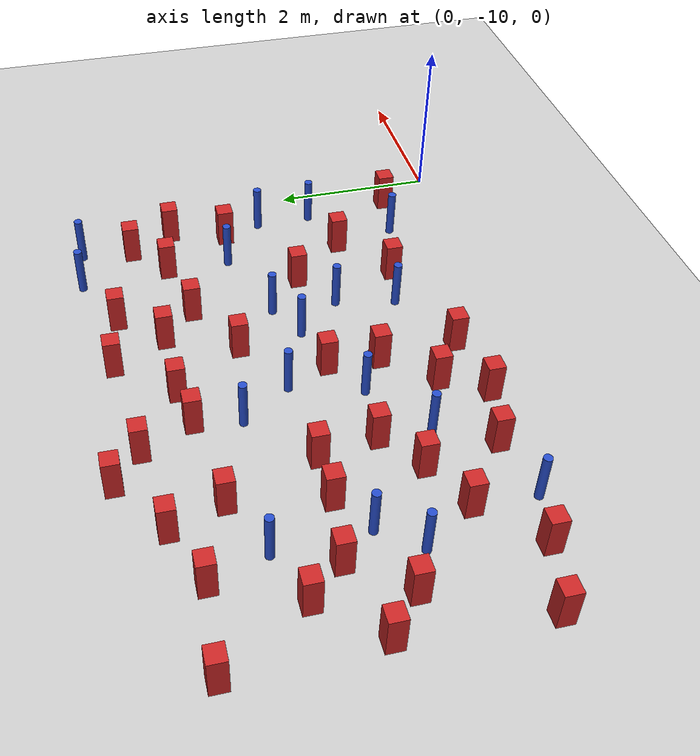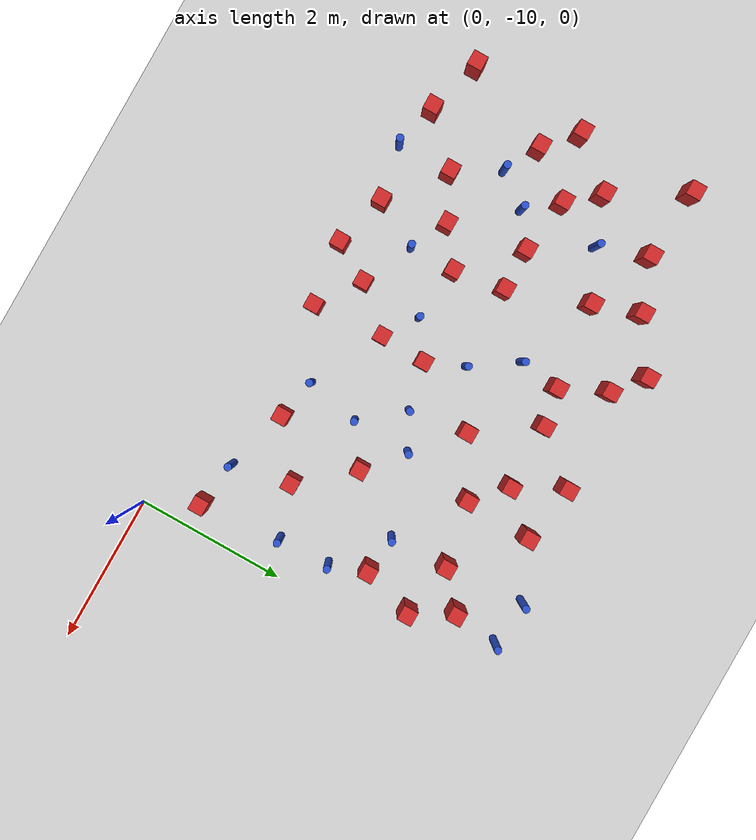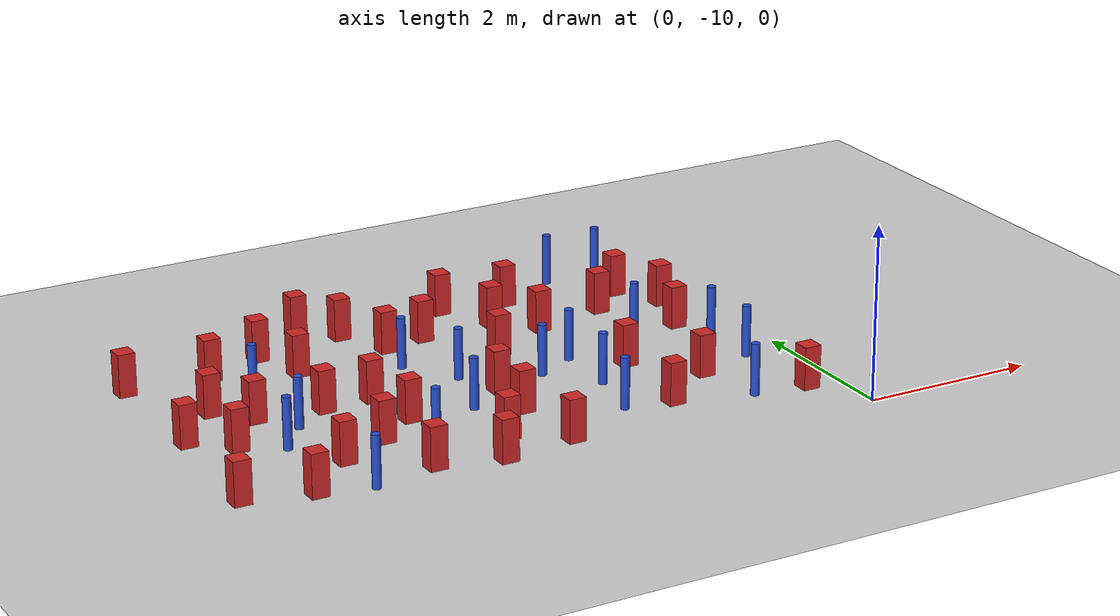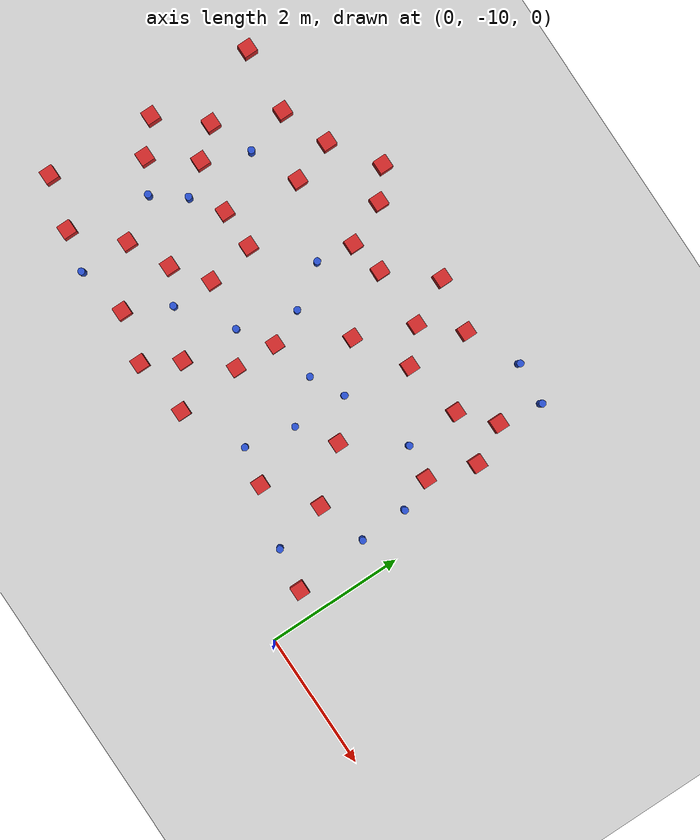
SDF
<sdf version="1.6">
 <world name="default">
  <model name="ground_plane">
   <static>1</static>
   <link name="link">
    <collision name="collision">
     <geometry><plane><normal>0 0 1</normal><size>100 100</size></plane></geometry>
     <surface><friction><ode><mu>100</mu><mu2>50</mu2></ode></friction></surface>
    </collision>
    <visual name="visual">
     <cast_shadows>0</cast_shadows>
     <geometry><plane><normal>0 0 1</normal><size>100 100</size></plane></geometry>
     <material>
      <ambient>1.0 1.0 1.0 1.0</ambient>
      <diffuse>0.8 0.8 0.8 1.0</diffuse>
      <specular>0.01 0.01 0.01 1.000000</specular>
     </material>
    </visual>
   </link>
  </model>
  <model name="pole_obstacle2">
   <static>true</static>
   <pose>-1.20993344297 -6.98747490904 7.38925637345e-09 -8.47170692799e-08 1.24976765033e-08 -1.74513093018e-07</pose>
   <link name="link">
    <pose>0 0 0.3 0 -0 0</pose>
    <inertial>
     <mass>1</mass>
     <inertia><ixx>0.145833</ixx><ixy>0</ixy><ixz>0</ixz><iyy>0.145833</iyy><iyz>0</iyz><izz>0.125</izz></inertia>
    </inertial>
    <collision name="collision">
     <geometry><cylinder><radius>0.05</radius><length>.6</length></cylinder></geometry>
    </collision>
    <visual name="visual">
     <geometry><cylinder><radius>0.05</radius><length>.6</length></cylinder></geometry>
     <material>
      <script><name>Gazebo/Blue</name><uri>file://media/materials/scripts/gazebo.material</uri></script>
     </material>
    </visual>
   </link>
  </model>
  <model name="square_post_obstacle6">
   <static>true</static>
   <pose>-3.41137875283 -6.00020693053 1.91545236811e-07 -7.35059704564e-06 1.12565212e-07 2.39332434364e-05</pose>
   <link name="link">
    <pose>0 0 0.25 0 -0 0</pose>
    <inertial>
     <mass>100</mass>
     <inertia>
      <ixx>0.166667</ixx>
      <ixy>0</ixy>
      <ixz>0</ixz>
      <iyy>0.166667</iyy>
      <iyz>0</iyz>
      <izz>0.166667</izz>
     </inertia>
    </inertial>
    <collision name="collision"><geometry><box><size>.2 .2 .5</size></box></geometry></collision>
    <visual name="visual">
     <geometry><box><size>.2 .2 .5</size></box></geometry>
     <material>
      <script><name>Gazebo/Red</name><uri>file://media/materials/scripts/gazebo.material</uri></script>
     </material>
    </visual>
   </link>
  </model>
  <model name="pole_obstacle9">
   <static>true</static>
   <pose>-2.73869889922 -7.59376571259 7.38925637345e-09 -8.47170692798e-08 1.24976765033e-08 -1.74513093019e-07</pose>
   <link name="link">
    <pose>0 0 0.3 0 -0 0</pose>
    <inertial>
     <mass>1</mass>
     <inertia><ixx>0.145833</ixx><ixy>0</ixy><ixz>0</ixz><iyy>0.145833</iyy><iyz>0</iyz><izz>0.125</izz></inertia>
    </inertial>
    <collision name="collision">
     <geometry><cylinder><radius>0.05</radius><length>.6</length></cylinder></geometry>
    </collision>
    <visual name="visual">
     <geometry><cylinder><radius>0.05</radius><length>.6</length></cylinder></geometry>
     <material>
      <script><name>Gazebo/Blue</name><uri>file://media/materials/scripts/gazebo.material</uri></script>
     </material>
    </visual>
   </link>
  </model>
  <model name="pole_obstacle18">
   <static>true</static>
   <pose>-3.83459840023 -8.06982385041 7.38925637345e-09 -8.47170692793e-08 1.24976764408e-08 -1.74513093041e-07</pose>
   <link name="link">
    <pose>0 0 0.3 0 -0 0</pose>
    <inertial>
     <mass>1</mass>
     <inertia><ixx>0.145833</ixx><ixy>0</ixy><ixz>0</ixz><iyy>0.145833</iyy><iyz>0</iyz><izz>0.125</izz></inertia>
    </inertial>
    <collision name="collision">
     <geometry><cylinder><radius>0.05</radius><length>.6</length></cylinder></geometry>
    </collision>
    <visual name="visual">
     <geometry><cylinder><radius>0.05</radius><length>.6</length></cylinder></geometry>
     <material>
      <script><name>Gazebo/Blue</name><uri>file://media/materials/scripts/gazebo.material</uri></script>
     </material>
    </visual>
   </link>
  </model>
  <model name="square_post_obstacle16">
   <static>true</static>
   <pose>-1.23818793762 -6.20411669702 1.91545236811e-07 -7.35059704564e-06 1.12565212e-07 2.39332434364e-05</pose>
   <link name="link">
    <pose>0 0 0.25 0 -0 0</pose>
    <inertial>
     <mass>100</mass>
     <inertia>
      <ixx>0.166667</ixx>
      <ixy>0</ixy>
      <ixz>0</ixz>
      <iyy>0.166667</iyy>
      <iyz>0</iyz>
      <izz>0.166667</izz>
     </inertia>
    </inertial>
    <collision name="collision"><geometry><box><size>.2 .2 .5</size></box></geometry></collision>
    <visual name="visual">
     <geometry><box><size>.2 .2 .5</size></box></geometry>
     <material>
      <script><name>Gazebo/Red</name><uri>file://media/materials/scripts/gazebo.material</uri></script>
     </material>
    </visual>
   </link>
  </model>
  <model name="pole_obstacle22">
   <static>true</static>
   <pose>-5.73764851238 -6.55398193869 7.38925637345e-09 -8.47170692796e-08 1.24976764786e-08 -1.74513093032e-07</pose>
   <link name="link">
    <pose>0 0 0.3 0 -0 0</pose>
    <inertial>
     <mass>1</mass>
     <inertia><ixx>0.145833</ixx><ixy>0</ixy><ixz>0</ixz><iyy>0.145833</iyy><iyz>0</iyz><izz>0.125</izz></inertia>
    </inertial>
    <collision name="collision">
     <geometry><cylinder><radius>0.05</radius><length>.6</length></cylinder></geometry>
    </collision>
    <visual name="visual">
     <geometry><cylinder><radius>0.05</radius><length>.6</length></cylinder></geometry>
     <material>
      <script><name>Gazebo/Blue</name><uri>file://media/materials/scripts/gazebo.material</uri></script>
     </material>
    </visual>
   </link>
  </model>
  <model name="square_post_obstacle24">
   <static>true</static>
   <pose>-6.99083242098 -9.02365506978 1.91545236811e-07 -7.35059704564e-06 1.12565212e-07 2.39332434364e-05</pose>
   <link name="link">
    <pose>0 0 0.25 0 -0 0</pose>
    <inertial>
     <mass>100</mass>
     <inertia>
      <ixx>0.166667</ixx>
      <ixy>0</ixy>
      <ixz>0</ixz>
      <iyy>0.166667</iyy>
      <iyz>0</iyz>
      <izz>0.166667</izz>
     </inertia>
    </inertial>
    <collision name="collision"><geometry><box><size>.2 .2 .5</size></box></geometry></collision>
    <visual name="visual">
     <geometry><box><size>.2 .2 .5</size></box></geometry>
     <material>
      <script><name>Gazebo/Red</name><uri>file://media/materials/scripts/gazebo.material</uri></script>
     </material>
    </visual>
   </link>
  </model>
  <model name="pole_obstacle36">
   <static>true</static>
   <pose>-2.43041097389 -8.86209386031 7.38925637345e-09 -8.47170692793e-08 1.24976764408e-08 -1.74513093041e-07</pose>
   <link name="link">
    <pose>0 0 0.3 0 -0 0</pose>
    <inertial>
     <mass>1</mass>
     <inertia><ixx>0.145833</ixx><ixy>0</ixy><ixz>0</ixz><iyy>0.145833</iyy><iyz>0</iyz><izz>0.125</izz></inertia>
    </inertial>
    <collision name="collision">
     <geometry><cylinder><radius>0.05</radius><length>.6</length></cylinder></geometry>
    </collision>
    <visual name="visual">
     <geometry><cylinder><radius>0.05</radius><length>.6</length></cylinder></geometry>
     <material>
      <script><name>Gazebo/Blue</name><uri>file://media/materials/scripts/gazebo.material</uri></script>
     </material>
    </visual>
   </link>
  </model>
  <model name="square_post_obstacle31">
   <static>true</static>
   <pose>-1.19487082993 -8.44704309048 1.91545236811e-07 -7.35059704564e-06 1.12565212e-07 2.39332434364e-05</pose>
   <link name="link">
    <pose>0 0 0.25 0 -0 0</pose>
    <inertial>
     <mass>100</mass>
     <inertia>
      <ixx>0.166667</ixx>
      <ixy>0</ixy>
      <ixz>0</ixz>
      <iyy>0.166667</iyy>
      <iyz>0</iyz>
      <izz>0.166667</izz>
     </inertia>
    </inertial>
    <collision name="collision"><geometry><box><size>.2 .2 .5</size></box></geometry></collision>
    <visual name="visual">
     <geometry><box><size>.2 .2 .5</size></box></geometry>
     <material>
      <script><name>Gazebo/Red</name><uri>file://media/materials/scripts/gazebo.material</uri></script>
     </material>
    </visual>
   </link>
  </model>
  <model name="pole_obstacle49">
   <static>true</static>
   <pose>-3.98826273719 -6.64425232996 7.38925637345e-09 -8.471706928e-08 1.24976765147e-08 -1.74513093014e-07</pose>
   <link name="link">
    <pose>0 0 0.3 0 -0 0</pose>
    <inertial>
     <mass>1</mass>
     <inertia><ixx>0.145833</ixx><ixy>0</ixy><ixz>0</ixz><iyy>0.145833</iyy><iyz>0</iyz><izz>0.125</izz></inertia>
    </inertial>
    <collision name="collision">
     <geometry><cylinder><radius>0.05</radius><length>.6</length></cylinder></geometry>
    </collision>
    <visual name="visual">
     <geometry><cylinder><radius>0.05</radius><length>.6</length></cylinder></geometry>
     <material>
      <script><name>Gazebo/Blue</name><uri>file://media/materials/scripts/gazebo.material</uri></script>
     </material>
    </visual>
   </link>
  </model>
  <model name="pole_obstacle53">
   <static>true</static>
   <pose>-5.68318521692 -7.61325709822 7.38925637345e-09 -8.47170692796e-08 1.24976764786e-08 -1.74513093032e-07</pose>
   <link name="link">
    <pose>0 0 0.3 0 -0 0</pose>
    <inertial>
     <mass>1</mass>
     <inertia><ixx>0.145833</ixx><ixy>0</ixy><ixz>0</ixz><iyy>0.145833</iyy><iyz>0</iyz><izz>0.125</izz></inertia>
    </inertial>
    <collision name="collision">
     <geometry><cylinder><radius>0.05</radius><length>.6</length></cylinder></geometry>
    </collision>
    <visual name="visual">
     <geometry><cylinder><radius>0.05</radius><length>.6</length></cylinder></geometry>
     <material>
      <script><name>Gazebo/Blue</name><uri>file://media/materials/scripts/gazebo.material</uri></script>
     </material>
    </visual>
   </link>
  </model>
  <model name="square_post_obstacle52">
   <static>true</static>
   <pose>-3.88104985837 -8.91403670507 1.91545236811e-07 -7.35059704564e-06 1.12565212e-07 2.39332434364e-05</pose>
   <link name="link">
    <pose>0 0 0.25 0 -0 0</pose>
    <inertial>
     <mass>100</mass>
     <inertia>
      <ixx>0.166667</ixx>
      <ixy>0</ixy>
      <ixz>0</ixz>
      <iyy>0.166667</iyy>
      <iyz>0</iyz>
      <izz>0.166667</izz>
     </inertia>
    </inertial>
    <collision name="collision"><geometry><box><size>.2 .2 .5</size></box></geometry></collision>
    <visual name="visual">
     <geometry><box><size>.2 .2 .5</size></box></geometry>
     <material>
      <script><name>Gazebo/Red</name><uri>file://media/materials/scripts/gazebo.material</uri></script>
     </material>
    </visual>
   </link>
  </model>
  <model name="square_post_obstacle53">
   <static>true</static>
   <pose>-4.5676394577 -7.98735345035 1.91545236811e-07 -7.35059704564e-06 1.12565212e-07 2.39332434364e-05</pose>
   <link name="link">
    <pose>0 0 0.25 0 -0 0</pose>
    <inertial>
     <mass>100</mass>
     <inertia>
      <ixx>0.166667</ixx>
      <ixy>0</ixy>
      <ixz>0</ixz>
      <iyy>0.166667</iyy>
      <iyz>0</iyz>
      <izz>0.166667</izz>
     </inertia>
    </inertial>
    <collision name="collision"><geometry><box><size>.2 .2 .5</size></box></geometry></collision>
    <visual name="visual">
     <geometry><box><size>.2 .2 .5</size></box></geometry>
     <material>
      <script><name>Gazebo/Red</name><uri>file://media/materials/scripts/gazebo.material</uri></script>
     </material>
    </visual>
   </link>
  </model>
  <model name="square_post_obstacle55">
   <static>true</static>
   <pose>-0.704043894959 -7.04296440702 1.91545236811e-07 -7.35059704564e-06 1.12565212e-07 2.39332434364e-05</pose>
   <link name="link">
    <pose>0 0 0.25 0 -0 0</pose>
    <inertial>
     <mass>100</mass>
     <inertia>
      <ixx>0.166667</ixx>
      <ixy>0</ixy>
      <ixz>0</ixz>
      <iyy>0.166667</iyy>
      <iyz>0</iyz>
      <izz>0.166667</izz>
     </inertia>
    </inertial>
    <collision name="collision"><geometry><box><size>.2 .2 .5</size></box></geometry></collision>
    <visual name="visual">
     <geometry><box><size>.2 .2 .5</size></box></geometry>
     <material>
      <script><name>Gazebo/Red</name><uri>file://media/materials/scripts/gazebo.material</uri></script>
     </material>
    </visual>
   </link>
  </model>
  <model name="square_post_obstacle63">
   <static>true</static>
   <pose>-6.36010682012 -6.80269297189 1.91545236811e-07 -7.35059704564e-06 1.12565212e-07 2.39332434364e-05</pose>
   <link name="link">
    <pose>0 0 0.25 0 -0 0</pose>
    <inertial>
     <mass>100</mass>
     <inertia>
      <ixx>0.166667</ixx>
      <ixy>0</ixy>
      <ixz>0</ixz>
      <iyy>0.166667</iyy>
      <iyz>0</iyz>
      <izz>0.166667</izz>
     </inertia>
    </inertial>
    <collision name="collision"><geometry><box><size>.2 .2 .5</size></box></geometry></collision>
    <visual name="visual">
     <geometry><box><size>.2 .2 .5</size></box></geometry>
     <material>
      <script><name>Gazebo/Red</name><uri>file://media/materials/scripts/gazebo.material</uri></script>
     </material>
    </visual>
   </link>
  </model>
  <model name="square_post_obstacle65">
   <static>true</static>
   <pose>-6.89579973793 -7.42919380627 1.91545236811e-07 -7.35059704564e-06 1.12565212e-07 2.39332434364e-05</pose>
   <link name="link">
    <pose>0 0 0.25 0 -0 0</pose>
    <inertial>
     <mass>100</mass>
     <inertia>
      <ixx>0.166667</ixx>
      <ixy>0</ixy>
      <ixz>0</ixz>
      <iyy>0.166667</iyy>
      <iyz>0</iyz>
      <izz>0.166667</izz>
     </inertia>
    </inertial>
    <collision name="collision"><geometry><box><size>.2 .2 .5</size></box></geometry></collision>
    <visual name="visual">
     <geometry><box><size>.2 .2 .5</size></box></geometry>
     <material>
      <script><name>Gazebo/Red</name><uri>file://media/materials/scripts/gazebo.material</uri></script>
     </material>
    </visual>
   </link>
  </model>
  <model name="pole_obstacle80">
   <static>true</static>
   <pose>-1.30820509989 -5.11871487185 7.38925637345e-09 -8.47170692799e-08 1.24976765033e-08 -1.74513093018e-07</pose>
   <link name="link">
    <pose>0 0 0.3 0 -0 0</pose>
    <inertial>
     <mass>1</mass>
     <inertia><ixx>0.145833</ixx><ixy>0</ixy><ixz>0</ixz><iyy>0.145833</iyy><iyz>0</iyz><izz>0.125</izz></inertia>
    </inertial>
    <collision name="collision">
     <geometry><cylinder><radius>0.05</radius><length>.6</length></cylinder></geometry>
    </collision>
    <visual name="visual">
     <geometry><cylinder><radius>0.05</radius><length>.6</length></cylinder></geometry>
     <material>
      <script><name>Gazebo/Blue</name><uri>file://media/materials/scripts/gazebo.material</uri></script>
     </material>
    </visual>
   </link>
  </model>
  <model name="pole_obstacle81">
   <static>true</static>
   <pose>-0.515479967216 -7.5261612755 7.38925637345e-09 -8.471706928e-08 1.24976765117e-08 -1.74513093013e-07</pose>
   <link name="link">
    <pose>0 0 0.3 0 -0 0</pose>
    <inertial>
     <mass>1</mass>
     <inertia><ixx>0.145833</ixx><ixy>0</ixy><ixz>0</ixz><iyy>0.145833</iyy><iyz>0</iyz><izz>0.125</izz></inertia>
    </inertial>
    <collision name="collision">
     <geometry><cylinder><radius>0.05</radius><length>.6</length></cylinder></geometry>
    </collision>
    <visual name="visual">
     <geometry><cylinder><radius>0.05</radius><length>.6</length></cylinder></geometry>
     <material>
      <script><name>Gazebo/Blue</name><uri>file://media/materials/scripts/gazebo.material</uri></script>
     </material>
    </visual>
   </link>
  </model>
  <model name="square_post_obstacle74">
   <static>true</static>
   <pose>-6.47764150163 -7.80500529448 1.91545236811e-07 -7.35059704564e-06 1.12565212e-07 2.39332434364e-05</pose>
   <link name="link">
    <pose>0 0 0.25 0 -0 0</pose>
    <inertial>
     <mass>100</mass>
     <inertia>
      <ixx>0.166667</ixx>
      <ixy>0</ixy>
      <ixz>0</ixz>
      <iyy>0.166667</iyy>
      <iyz>0</iyz>
      <izz>0.166667</izz>
     </inertia>
    </inertial>
    <collision name="collision"><geometry><box><size>.2 .2 .5</size></box></geometry></collision>
    <visual name="visual">
     <geometry><box><size>.2 .2 .5</size></box></geometry>
     <material>
      <script><name>Gazebo/Red</name><uri>file://media/materials/scripts/gazebo.material</uri></script>
     </material>
    </visual>
   </link>
  </model>
  <model name="pole_obstacle88">
   <static>true</static>
   <pose>-4.56712619839 -8.60503989252 7.38925637345e-09 -8.471706928e-08 1.24976765081e-08 -1.74513093015e-07</pose>
   <link name="link">
    <pose>0 0 0.3 0 -0 0</pose>
    <inertial>
     <mass>1</mass>
     <inertia><ixx>0.145833</ixx><ixy>0</ixy><ixz>0</ixz><iyy>0.145833</iyy><iyz>0</iyz><izz>0.125</izz></inertia>
    </inertial>
    <collision name="collision">
     <geometry><cylinder><radius>0.05</radius><length>.6</length></cylinder></geometry>
    </collision>
    <visual name="visual">
     <geometry><cylinder><radius>0.05</radius><length>.6</length></cylinder></geometry>
     <material>
      <script><name>Gazebo/Blue</name><uri>file://media/materials/scripts/gazebo.material</uri></script>
     </material>
    </visual>
   </link>
  </model>
  <model name="pole_obstacle89">
   <static>true</static>
   <pose>-1.01621365592 -9.22957666346 7.38925637345e-09 -8.47170692798e-08 1.2497676492e-08 -1.74513093025e-07</pose>
   <link name="link">
    <pose>0 0 0.3 0 -0 0</pose>
    <inertial>
     <mass>1</mass>
     <inertia><ixx>0.145833</ixx><ixy>0</ixy><ixz>0</ixz><iyy>0.145833</iyy><iyz>0</iyz><izz>0.125</izz></inertia>
    </inertial>
    <collision name="collision">
     <geometry><cylinder><radius>0.05</radius><length>.6</length></cylinder></geometry>
    </collision>
    <visual name="visual">
     <geometry><cylinder><radius>0.05</radius><length>.6</length></cylinder></geometry>
     <material>
      <script><name>Gazebo/Blue</name><uri>file://media/materials/scripts/gazebo.material</uri></script>
     </material>
    </visual>
   </link>
  </model>
  <model name="square_post_obstacle79">
   <static>true</static>
   <pose>-2.85725970552 -5.35147807729 1.91545236811e-07 -7.35059704564e-06 1.12565212e-07 2.39332434364e-05</pose>
   <link name="link">
    <pose>0 0 0.25 0 -0 0</pose>
    <inertial>
     <mass>100</mass>
     <inertia>
      <ixx>0.166667</ixx>
      <ixy>0</ixy>
      <ixz>0</ixz>
      <iyy>0.166667</iyy>
      <iyz>0</iyz>
      <izz>0.166667</izz>
     </inertia>
    </inertial>
    <collision name="collision"><geometry><box><size>.2 .2 .5</size></box></geometry></collision>
    <visual name="visual">
     <geometry><box><size>.2 .2 .5</size></box></geometry>
     <material>
      <script><name>Gazebo/Red</name><uri>file://media/materials/scripts/gazebo.material</uri></script>
     </material>
    </visual>
   </link>
  </model>
  <model name="square_post_obstacle85">
   <static>true</static>
   <pose>-3.39676742198 -8.36189234067 1.91545236811e-07 -7.35059704564e-06 1.12565212e-07 2.39332434364e-05</pose>
   <link name="link">
    <pose>0 0 0.25 0 -0 0</pose>
    <inertial>
     <mass>100</mass>
     <inertia>
      <ixx>0.166667</ixx>
      <ixy>0</ixy>
      <ixz>0</ixz>
      <iyy>0.166667</iyy>
      <iyz>0</iyz>
      <izz>0.166667</izz>
     </inertia>
    </inertial>
    <collision name="collision"><geometry><box><size>.2 .2 .5</size></box></geometry></collision>
    <visual name="visual">
     <geometry><box><size>.2 .2 .5</size></box></geometry>
     <material>
      <script><name>Gazebo/Red</name><uri>file://media/materials/scripts/gazebo.material</uri></script>
     </material>
    </visual>
   </link>
  </model>
  <model name="square_post_obstacle87">
   <static>true</static>
   <pose>-0.487620723473 -6.34805386204 1.91545236811e-07 -7.35059704564e-06 1.12565212e-07 2.39332434364e-05</pose>
   <link name="link">
    <pose>0 0 0.25 0 -0 0</pose>
    <inertial>
     <mass>100</mass>
     <inertia>
      <ixx>0.166667</ixx>
      <ixy>0</ixy>
      <ixz>0</ixz>
      <iyy>0.166667</iyy>
      <iyz>0</iyz>
      <izz>0.166667</izz>
     </inertia>
    </inertial>
    <collision name="collision"><geometry><box><size>.2 .2 .5</size></box></geometry></collision>
    <visual name="visual">
     <geometry><box><size>.2 .2 .5</size></box></geometry>
     <material>
      <script><name>Gazebo/Red</name><uri>file://media/materials/scripts/gazebo.material</uri></script>
     </material>
    </visual>
   </link>
  </model>
  <model name="pole_obstacle98">
   <static>true</static>
   <pose>-5.6446876659 -9.38441674095 7.38925637345e-09 -8.471706928e-08 1.24976765081e-08 -1.74513093015e-07</pose>
   <link name="link">
    <pose>0 0 0.3 0 -0 0</pose>
    <inertial>
     <mass>1</mass>
     <inertia><ixx>0.145833</ixx><ixy>0</ixy><ixz>0</ixz><iyy>0.145833</iyy><iyz>0</iyz><izz>0.125</izz></inertia>
    </inertial>
    <collision name="collision">
     <geometry><cylinder><radius>0.05</radius><length>.6</length></cylinder></geometry>
    </collision>
    <visual name="visual">
     <geometry><cylinder><radius>0.05</radius><length>.6</length></cylinder></geometry>
     <material>
      <script><name>Gazebo/Blue</name><uri>file://media/materials/scripts/gazebo.material</uri></script>
     </material>
    </visual>
   </link>
  </model>
  <model name="square_post_obstacle91">
   <static>true</static>
   <pose>-6.9290253262 -5.8266858636 1.91545236811e-07 -7.35059704564e-06 1.12565212e-07 2.39332434364e-05</pose>
   <link name="link">
    <pose>0 0 0.25 0 -0 0</pose>
    <inertial>
     <mass>100</mass>
     <inertia>
      <ixx>0.166667</ixx>
      <ixy>0</ixy>
      <ixz>0</ixz>
      <iyy>0.166667</iyy>
      <iyz>0</iyz>
      <izz>0.166667</izz>
     </inertia>
    </inertial>
    <collision name="collision"><geometry><box><size>.2 .2 .5</size></box></geometry></collision>
    <visual name="visual">
     <geometry><box><size>.2 .2 .5</size></box></geometry>
     <material>
      <script><name>Gazebo/Red</name><uri>file://media/materials/scripts/gazebo.material</uri></script>
     </material>
    </visual>
   </link>
  </model>
  <model name="square_post_obstacle99">
   <static>true</static>
   <pose>-5.64413191634 -8.64507384976 1.91545236811e-07 -7.35059704564e-06 1.12565212e-07 2.39332434364e-05</pose>
   <link name="link">
    <pose>0 0 0.25 0 -0 0</pose>
    <inertial>
     <mass>100</mass>
     <inertia>
      <ixx>0.166667</ixx>
      <ixy>0</ixy>
      <ixz>0</ixz>
      <iyy>0.166667</iyy>
      <iyz>0</iyz>
      <izz>0.166667</izz>
     </inertia>
    </inertial>
    <collision name="collision"><geometry><box><size>.2 .2 .5</size></box></geometry></collision>
    <visual name="visual">
     <geometry><box><size>.2 .2 .5</size></box></geometry>
     <material>
      <script><name>Gazebo/Red</name><uri>file://media/materials/scripts/gazebo.material</uri></script>
     </material>
    </visual>
   </link>
  </model>
  <model name="pole_obstacle118">
   <static>true</static>
   <pose>-2.26501729078 -7.34462697803 7.38925637345e-09 -8.47170692798e-08 1.24976765033e-08 -1.74513093019e-07</pose>
   <link name="link">
    <pose>0 0 0.3 0 -0 0</pose>
    <inertial>
     <mass>1</mass>
     <inertia><ixx>0.145833</ixx><ixy>0</ixy><ixz>0</ixz><iyy>0.145833</iyy><iyz>0</iyz><izz>0.125</izz></inertia>
    </inertial>
    <collision name="collision">
     <geometry><cylinder><radius>0.05</radius><length>.6</length></cylinder></geometry>
    </collision>
    <visual name="visual">
     <geometry><cylinder><radius>0.05</radius><length>.6</length></cylinder></geometry>
     <material>
      <script><name>Gazebo/Blue</name><uri>file://media/materials/scripts/gazebo.material</uri></script>
     </material>
    </visual>
   </link>
  </model>
  <model name="square_post_obstacle122">
   <static>true</static>
   <pose>-2.10582575682 -6.38091250713 1.91545236811e-07 -7.35059704564e-06 1.12565212e-07 2.39332434364e-05</pose>
   <link name="link">
    <pose>0 0 0.25 0 -0 0</pose>
    <inertial>
     <mass>100</mass>
     <inertia>
      <ixx>0.166667</ixx>
      <ixy>0</ixy>
      <ixz>0</ixz>
      <iyy>0.166667</iyy>
      <iyz>0</iyz>
      <izz>0.166667</izz>
     </inertia>
    </inertial>
    <collision name="collision"><geometry><box><size>.2 .2 .5</size></box></geometry></collision>
    <visual name="visual">
     <geometry><box><size>.2 .2 .5</size></box></geometry>
     <material>
      <script><name>Gazebo/Red</name><uri>file://media/materials/scripts/gazebo.material</uri></script>
     </material>
    </visual>
   </link>
  </model>
  <model name="square_post_obstacle127">
   <static>true</static>
   <pose>-3.31822131916 -9.31240990885 1.91545236811e-07 -7.35059704564e-06 1.12565212e-07 2.39332434364e-05</pose>
   <link name="link">
    <pose>0 0 0.25 0 -0 0</pose>
    <inertial>
     <mass>100</mass>
     <inertia>
      <ixx>0.166667</ixx>
      <ixy>0</ixy>
      <ixz>0</ixz>
      <iyy>0.166667</iyy>
      <iyz>0</iyz>
      <izz>0.166667</izz>
     </inertia>
    </inertial>
    <collision name="collision"><geometry><box><size>.2 .2 .5</size></box></geometry></collision>
    <visual name="visual">
     <geometry><box><size>.2 .2 .5</size></box></geometry>
     <material>
      <script><name>Gazebo/Red</name><uri>file://media/materials/scripts/gazebo.material</uri></script>
     </material>
    </visual>
   </link>
  </model>
  <model name="square_post_obstacle131">
   <static>true</static>
   <pose>-4.68314557809 -7.30195323858 1.91545236811e-07 -7.35059704564e-06 1.12565212e-07 2.39332434364e-05</pose>
   <link name="link">
    <pose>0 0 0.25 0 -0 0</pose>
    <inertial>
     <mass>100</mass>
     <inertia>
      <ixx>0.166667</ixx>
      <ixy>0</ixy>
      <ixz>0</ixz>
      <iyy>0.166667</iyy>
      <iyz>0</iyz>
      <izz>0.166667</izz>
     </inertia>
    </inertial>
    <collision name="collision"><geometry><box><size>.2 .2 .5</size></box></geometry></collision>
    <visual name="visual">
     <geometry><box><size>.2 .2 .5</size></box></geometry>
     <material>
      <script><name>Gazebo/Red</name><uri>file://media/materials/scripts/gazebo.material</uri></script>
     </material>
    </visual>
   </link>
  </model>
  <model name="pole_obstacle134">
   <static>true</static>
   <pose>-3.58841758942 -7.23520152412 7.38925637345e-09 -8.47170692794e-08 1.24976764468e-08 -1.7451309304e-07</pose>
   <link name="link">
    <pose>0 0 0.3 0 -0 0</pose>
    <inertial>
     <mass>1</mass>
     <inertia><ixx>0.145833</ixx><ixy>0</ixy><ixz>0</ixz><iyy>0.145833</iyy><iyz>0</iyz><izz>0.125</izz></inertia>
    </inertial>
    <collision name="collision">
     <geometry><cylinder><radius>0.05</radius><length>.6</length></cylinder></geometry>
    </collision>
    <visual name="visual">
     <geometry><cylinder><radius>0.05</radius><length>.6</length></cylinder></geometry>
     <material>
      <script><name>Gazebo/Blue</name><uri>file://media/materials/scripts/gazebo.material</uri></script>
     </material>
    </visual>
   </link>
  </model>
  <model name="pole_obstacle138">
   <static>true</static>
   <pose>-6.01559515737 -8.05422292139 7.38925637345e-09 -8.471706928e-08 1.24976765081e-08 -1.74513093015e-07</pose>
   <link name="link">
    <pose>0 0 0.3 0 -0 0</pose>
    <inertial>
     <mass>1</mass>
     <inertia><ixx>0.145833</ixx><ixy>0</ixy><ixz>0</ixz><iyy>0.145833</iyy><iyz>0</iyz><izz>0.125</izz></inertia>
    </inertial>
    <collision name="collision">
     <geometry><cylinder><radius>0.05</radius><length>.6</length></cylinder></geometry>
    </collision>
    <visual name="visual">
     <geometry><cylinder><radius>0.05</radius><length>.6</length></cylinder></geometry>
     <material>
      <script><name>Gazebo/Blue</name><uri>file://media/materials/scripts/gazebo.material</uri></script>
     </material>
    </visual>
   </link>
  </model>
  <model name="square_post_obstacle135">
   <static>true</static>
   <pose>-2.86056230158 -6.81484640142 1.91545236811e-07 -7.35059704564e-06 1.12565212e-07 2.39332434364e-05</pose>
   <link name="link">
    <pose>0 0 0.25 0 -0 0</pose>
    <inertial>
     <mass>100</mass>
     <inertia>
      <ixx>0.166667</ixx>
      <ixy>0</ixy>
      <ixz>0</ixz>
      <iyy>0.166667</iyy>
      <iyz>0</iyz>
      <izz>0.166667</izz>
     </inertia>
    </inertial>
    <collision name="collision"><geometry><box><size>.2 .2 .5</size></box></geometry></collision>
    <visual name="visual">
     <geometry><box><size>.2 .2 .5</size></box></geometry>
     <material>
      <script><name>Gazebo/Red</name><uri>file://media/materials/scripts/gazebo.material</uri></script>
     </material>
    </visual>
   </link>
  </model>
  <model name="square_post_obstacle136">
   <static>true</static>
   <pose>-1.77632969412 -7.77249071584 1.91545236811e-07 -7.35059704564e-06 1.12565212e-07 2.39332434364e-05</pose>
   <link name="link">
    <pose>0 0 0.25 0 -0 0</pose>
    <inertial>
     <mass>100</mass>
     <inertia>
      <ixx>0.166667</ixx>
      <ixy>0</ixy>
      <ixz>0</ixz>
      <iyy>0.166667</iyy>
      <iyz>0</iyz>
      <izz>0.166667</izz>
     </inertia>
    </inertial>
    <collision name="collision"><geometry><box><size>.2 .2 .5</size></box></geometry></collision>
    <visual name="visual">
     <geometry><box><size>.2 .2 .5</size></box></geometry>
     <material>
      <script><name>Gazebo/Red</name><uri>file://media/materials/scripts/gazebo.material</uri></script>
     </material>
    </visual>
   </link>
  </model>
  <model name="square_post_obstacle139">
   <static>true</static>
   <pose>-0.395477096207 -9.3189242794 1.91545236811e-07 -7.35059704564e-06 1.12565212e-07 2.39332434364e-05</pose>
   <link name="link">
    <pose>0 0 0.25 0 -0 0</pose>
    <inertial>
     <mass>100</mass>
     <inertia>
      <ixx>0.166667</ixx>
      <ixy>0</ixy>
      <ixz>0</ixz>
      <iyy>0.166667</iyy>
      <iyz>0</iyz>
      <izz>0.166667</izz>
     </inertia>
    </inertial>
    <collision name="collision"><geometry><box><size>.2 .2 .5</size></box></geometry></collision>
    <visual name="visual">
     <geometry><box><size>.2 .2 .5</size></box></geometry>
     <material>
      <script><name>Gazebo/Red</name><uri>file://media/materials/scripts/gazebo.material</uri></script>
     </material>
    </visual>
   </link>
  </model>
  <model name="square_post_obstacle143">
   <static>true</static>
   <pose>-4.17484094167 -9.42111421053 1.91545236811e-07 -7.35059704564e-06 1.12565212e-07 2.39332434364e-05</pose>
   <link name="link">
    <pose>0 0 0.25 0 -0 0</pose>
    <inertial>
     <mass>100</mass>
     <inertia>
      <ixx>0.166667</ixx>
      <ixy>0</ixy>
      <ixz>0</ixz>
      <iyy>0.166667</iyy>
      <iyz>0</iyz>
      <izz>0.166667</izz>
     </inertia>
    </inertial>
    <collision name="collision"><geometry><box><size>.2 .2 .5</size></box></geometry></collision>
    <visual name="visual">
     <geometry><box><size>.2 .2 .5</size></box></geometry>
     <material>
      <script><name>Gazebo/Red</name><uri>file://media/materials/scripts/gazebo.material</uri></script>
     </material>
    </visual>
   </link>
  </model>
  <model name="square_post_obstacle145">
   <static>true</static>
   <pose>-4.2020567065 -5.49181078865 1.91545236811e-07 -7.35059704564e-06 1.12565212e-07 2.39332434364e-05</pose>
   <link name="link">
    <pose>0 0 0.25 0 -0 0</pose>
    <inertial>
     <mass>100</mass>
     <inertia>
      <ixx>0.166667</ixx>
      <ixy>0</ixy>
      <ixz>0</ixz>
      <iyy>0.166667</iyy>
      <iyz>0</iyz>
      <izz>0.166667</izz>
     </inertia>
    </inertial>
    <collision name="collision"><geometry><box><size>.2 .2 .5</size></box></geometry></collision>
    <visual name="visual">
     <geometry><box><size>.2 .2 .5</size></box></geometry>
     <material>
      <script><name>Gazebo/Red</name><uri>file://media/materials/scripts/gazebo.material</uri></script>
     </material>
    </visual>
   </link>
  </model>
  <model name="pole_obstacle160">
   <static>true</static>
   <pose>-0.688113022767 -5.17149629447 7.38925637345e-09 -8.471706928e-08 1.24976765086e-08 -1.74513093015e-07</pose>
   <link name="link">
    <pose>0 0 0.3 0 -0 0</pose>
    <inertial>
     <mass>1</mass>
     <inertia><ixx>0.145833</ixx><ixy>0</ixy><ixz>0</ixz><iyy>0.145833</iyy><iyz>0</iyz><izz>0.125</izz></inertia>
    </inertial>
    <collision name="collision">
     <geometry><cylinder><radius>0.05</radius><length>.6</length></cylinder></geometry>
    </collision>
    <visual name="visual">
     <geometry><cylinder><radius>0.05</radius><length>.6</length></cylinder></geometry>
     <material>
      <script><name>Gazebo/Blue</name><uri>file://media/materials/scripts/gazebo.material</uri></script>
     </material>
    </visual>
   </link>
  </model>
  <model name="square_post_obstacle158">
   <static>true</static>
   <pose>-2.07403787332 -5.47725686608 1.91545236811e-07 -7.35059704564e-06 1.12565212e-07 2.39332434364e-05</pose>
   <link name="link">
    <pose>0 0 0.25 0 -0 0</pose>
    <inertial>
     <mass>100</mass>
     <inertia>
      <ixx>0.166667</ixx>
      <ixy>0</ixy>
      <ixz>0</ixz>
      <iyy>0.166667</iyy>
      <iyz>0</iyz>
      <izz>0.166667</izz>
     </inertia>
    </inertial>
    <collision name="collision"><geometry><box><size>.2 .2 .5</size></box></geometry></collision>
    <visual name="visual">
     <geometry><box><size>.2 .2 .5</size></box></geometry>
     <material>
      <script><name>Gazebo/Red</name><uri>file://media/materials/scripts/gazebo.material</uri></script>
     </material>
    </visual>
   </link>
  </model>
  <model name="square_post_obstacle162">
   <static>true</static>
   <pose>-5.06404376625 -6.24451630223 1.91545236811e-07 -7.35059704564e-06 1.12565212e-07 2.39332434364e-05</pose>
   <link name="link">
    <pose>0 0 0.25 0 -0 0</pose>
    <inertial>
     <mass>100</mass>
     <inertia>
      <ixx>0.166667</ixx>
      <ixy>0</ixy>
      <ixz>0</ixz>
      <iyy>0.166667</iyy>
      <iyz>0</iyz>
      <izz>0.166667</izz>
     </inertia>
    </inertial>
    <collision name="collision"><geometry><box><size>.2 .2 .5</size></box></geometry></collision>
    <visual name="visual">
     <geometry><box><size>.2 .2 .5</size></box></geometry>
     <material>
      <script><name>Gazebo/Red</name><uri>file://media/materials/scripts/gazebo.material</uri></script>
     </material>
    </visual>
   </link>
  </model>
  <model name="square_post_obstacle164">
   <static>true</static>
   <pose>-5.05216192665 -8.35229488857 1.91545236811e-07 -7.35059704564e-06 1.12565212e-07 2.39332434364e-05</pose>
   <link name="link">
    <pose>0 0 0.25 0 -0 0</pose>
    <inertial>
     <mass>100</mass>
     <inertia>
      <ixx>0.166667</ixx>
      <ixy>0</ixy>
      <ixz>0</ixz>
      <iyy>0.166667</iyy>
      <iyz>0</iyz>
      <izz>0.166667</izz>
     </inertia>
    </inertial>
    <collision name="collision"><geometry><box><size>.2 .2 .5</size></box></geometry></collision>
    <visual name="visual">
     <geometry><box><size>.2 .2 .5</size></box></geometry>
     <material>
      <script><name>Gazebo/Red</name><uri>file://media/materials/scripts/gazebo.material</uri></script>
     </material>
    </visual>
   </link>
  </model>
  <model name="square_post_obstacle167">
   <static>true</static>
   <pose>-5.273552865 -5.62843870765 1.91545236811e-07 -7.35059704564e-06 1.12565212e-07 2.39332434364e-05</pose>
   <link name="link">
    <pose>0 0 0.25 0 -0 0</pose>
    <inertial>
     <mass>100</mass>
     <inertia>
      <ixx>0.166667</ixx>
      <ixy>0</ixy>
      <ixz>0</ixz>
      <iyy>0.166667</iyy>
      <iyz>0</iyz>
      <izz>0.166667</izz>
     </inertia>
    </inertial>
    <collision name="collision"><geometry><box><size>.2 .2 .5</size></box></geometry></collision>
    <visual name="visual">
     <geometry><box><size>.2 .2 .5</size></box></geometry>
     <material>
      <script><name>Gazebo/Red</name><uri>file://media/materials/scripts/gazebo.material</uri></script>
     </material>
    </visual>
   </link>
  </model>
  <model name="square_post_obstacle180">
   <static>true</static>
   <pose>-6.23860660756 -9.23680779268 1.91545236811e-07 -7.35059704564e-06 1.12565212e-07 2.39332434364e-05</pose>
   <link name="link">
    <pose>0 0 0.25 0 -0 0</pose>
    <inertial>
     <mass>100</mass>
     <inertia>
      <ixx>0.166667</ixx>
      <ixy>0</ixy>
      <ixz>0</ixz>
      <iyy>0.166667</iyy>
      <iyz>0</iyz>
      <izz>0.166667</izz>
     </inertia>
    </inertial>
    <collision name="collision"><geometry><box><size>.2 .2 .5</size></box></geometry></collision>
    <visual name="visual">
     <geometry><box><size>.2 .2 .5</size></box></geometry>
     <material>
      <script><name>Gazebo/Red</name><uri>file://media/materials/scripts/gazebo.material</uri></script>
     </material>
    </visual>
   </link>
  </model>
  <model name="square_post_obstacle184">
   <static>true</static>
   <pose>-4.59323071444 -5.16620174875 1.91545236811e-07 -7.35059704564e-06 1.12565212e-07 2.39332434364e-05</pose>
   <link name="link">
    <pose>0 0 0.25 0 -0 0</pose>
    <inertial>
     <mass>100</mass>
     <inertia>
      <ixx>0.166667</ixx>
      <ixy>0</ixy>
      <ixz>0</ixz>
      <iyy>0.166667</iyy>
      <iyz>0</iyz>
      <izz>0.166667</izz>
     </inertia>
    </inertial>
    <collision name="collision"><geometry><box><size>.2 .2 .5</size></box></geometry></collision>
    <visual name="visual">
     <geometry><box><size>.2 .2 .5</size></box></geometry>
     <material>
      <script><name>Gazebo/Red</name><uri>file://media/materials/scripts/gazebo.material</uri></script>
     </material>
    </visual>
   </link>
  </model>
  <model name="square_post_obstacle195">
   <static>true</static>
   <pose>-1.88779736973 -8.97061208235 1.91545236811e-07 -7.35059704564e-06 1.12565212e-07 2.39332434364e-05</pose>
   <link name="link">
    <pose>0 0 0.25 0 -0 0</pose>
    <inertial>
     <mass>100</mass>
     <inertia>
      <ixx>0.166667</ixx>
      <ixy>0</ixy>
      <ixz>0</ixz>
      <iyy>0.166667</iyy>
      <iyz>0</iyz>
      <izz>0.166667</izz>
     </inertia>
    </inertial>
    <collision name="collision"><geometry><box><size>.2 .2 .5</size></box></geometry></collision>
    <visual name="visual">
     <geometry><box><size>.2 .2 .5</size></box></geometry>
     <material>
      <script><name>Gazebo/Red</name><uri>file://media/materials/scripts/gazebo.material</uri></script>
     </material>
    </visual>
   </link>
  </model>
  <model name="square_post_obstacle201">
   <static>true</static>
   <pose>-3.37012035484 -7.74339540413 1.91545236811e-07 -7.35059704564e-06 1.12565212e-07 2.39332434364e-05</pose>
   <link name="link">
    <pose>0 0 0.25 0 -0 0</pose>
    <inertial>
     <mass>100</mass>
     <inertia>
      <ixx>0.166667</ixx>
      <ixy>0</ixy>
      <ixz>0</ixz>
      <iyy>0.166667</iyy>
      <iyz>0</iyz>
      <izz>0.166667</izz>
     </inertia>
    </inertial>
    <collision name="collision"><geometry><box><size>.2 .2 .5</size></box></geometry></collision>
    <visual name="visual">
     <geometry><box><size>.2 .2 .5</size></box></geometry>
     <material>
      <script><name>Gazebo/Red</name><uri>file://media/materials/scripts/gazebo.material</uri></script>
     </material>
    </visual>
   </link>
  </model>
  <model name="pole_obstacle192">
   <static>true</static>
   <pose>-2.28454327891 -8.13832089477 7.38925637345e-09 -8.47170692793e-08 1.24976764408e-08 -1.74513093041e-07</pose>
   <link name="link">
    <pose>0 0 0.3 0 -0 0</pose>
    <inertial>
     <mass>1</mass>
     <inertia><ixx>0.145833</ixx><ixy>0</ixy><ixz>0</ixz><iyy>0.145833</iyy><iyz>0</iyz><izz>0.125</izz></inertia>
    </inertial>
    <collision name="collision">
     <geometry><cylinder><radius>0.05</radius><length>.6</length></cylinder></geometry>
    </collision>
    <visual name="visual">
     <geometry><cylinder><radius>0.05</radius><length>.6</length></cylinder></geometry>
     <material>
      <script><name>Gazebo/Blue</name><uri>file://media/materials/scripts/gazebo.material</uri></script>
     </material>
    </visual>
   </link>
  </model>
  <model name="square_post_obstacle203">
   <static>true</static>
   <pose>-2.5244335624 -5.98961555855 1.91545236811e-07 -7.35059704564e-06 1.12565212e-07 2.39332434364e-05</pose>
   <link name="link">
    <pose>0 0 0.25 0 -0 0</pose>
    <inertial>
     <mass>100</mass>
     <inertia>
      <ixx>0.166667</ixx>
      <ixy>0</ixy>
      <ixz>0</ixz>
      <iyy>0.166667</iyy>
      <iyz>0</iyz>
      <izz>0.166667</izz>
     </inertia>
    </inertial>
    <collision name="collision"><geometry><box><size>.2 .2 .5</size></box></geometry></collision>
    <visual name="visual">
     <geometry><box><size>.2 .2 .5</size></box></geometry>
     <material>
      <script><name>Gazebo/Red</name><uri>file://media/materials/scripts/gazebo.material</uri></script>
     </material>
    </visual>
   </link>
  </model>
  <model name="square_post_obstacle205">
   <static>true</static>
   <pose>-3.91538312134 -6.09857806587 1.91545236811e-07 -7.35059704564e-06 1.12565212e-07 2.39332434364e-05</pose>
   <link name="link">
    <pose>0 0 0.25 0 -0 0</pose>
    <inertial>
     <mass>100</mass>
     <inertia>
      <ixx>0.166667</ixx>
      <ixy>0</ixy>
      <ixz>0</ixz>
      <iyy>0.166667</iyy>
      <iyz>0</iyz>
      <izz>0.166667</izz>
     </inertia>
    </inertial>
    <collision name="collision"><geometry><box><size>.2 .2 .5</size></box></geometry></collision>
    <visual name="visual">
     <geometry><box><size>.2 .2 .5</size></box></geometry>
     <material>
      <script><name>Gazebo/Red</name><uri>file://media/materials/scripts/gazebo.material</uri></script>
     </material>
    </visual>
   </link>
  </model>
  <model name="pole_obstacle196">
   <static>true</static>
   <pose>-0.491900630921 -8.22784633027 7.38925637345e-09 -8.47170692799e-08 1.24976764918e-08 -1.74513093025e-07</pose>
   <link name="link">
    <pose>0 0 0.3 0 -0 0</pose>
    <inertial>
     <mass>1</mass>
     <inertia><ixx>0.145833</ixx><ixy>0</ixy><ixz>0</ixz><iyy>0.145833</iyy><iyz>0</iyz><izz>0.125</izz></inertia>
    </inertial>
    <collision name="collision">
     <geometry><cylinder><radius>0.05</radius><length>.6</length></cylinder></geometry>
    </collision>
    <visual name="visual">
     <geometry><cylinder><radius>0.05</radius><length>.6</length></cylinder></geometry>
     <material>
      <script><name>Gazebo/Blue</name><uri>file://media/materials/scripts/gazebo.material</uri></script>
     </material>
    </visual>
   </link>
  </model>
  <model name="square_post_obstacle212">
   <static>true</static>
   <pose>-5.25213241532 -7.30946293698 1.91545236811e-07 -7.35059704564e-06 1.12565212e-07 2.39332434364e-05</pose>
   <link name="link">
    <pose>0 0 0.25 0 -0 0</pose>
    <inertial>
     <mass>100</mass>
     <inertia>
      <ixx>0.166667</ixx>
      <ixy>0</ixy>
      <ixz>0</ixz>
      <iyy>0.166667</iyy>
      <iyz>0</iyz>
      <izz>0.166667</izz>
     </inertia>
    </inertial>
    <collision name="collision"><geometry><box><size>.2 .2 .5</size></box></geometry></collision>
    <visual name="visual">
     <geometry><box><size>.2 .2 .5</size></box></geometry>
     <material>
      <script><name>Gazebo/Red</name><uri>file://media/materials/scripts/gazebo.material</uri></script>
     </material>
    </visual>
   </link>
  </model>
  <model name="square_post_obstacle213">
   <static>true</static>
   <pose>-4.90016773578 -9.22708967848 1.91545236811e-07 -7.35059704564e-06 1.12565212e-07 2.39332434364e-05</pose>
   <link name="link">
    <pose>0 0 0.25 0 -0 0</pose>
    <inertial>
     <mass>100</mass>
     <inertia>
      <ixx>0.166667</ixx>
      <ixy>0</ixy>
      <ixz>0</ixz>
      <iyy>0.166667</iyy>
      <iyz>0</iyz>
      <izz>0.166667</izz>
     </inertia>
    </inertial>
    <collision name="collision"><geometry><box><size>.2 .2 .5</size></box></geometry></collision>
    <visual name="visual">
     <geometry><box><size>.2 .2 .5</size></box></geometry>
     <material>
      <script><name>Gazebo/Red</name><uri>file://media/materials/scripts/gazebo.material</uri></script>
     </material>
    </visual>
   </link>
  </model>
  <model name="square_post_obstacle214">
   <static>true</static>
   <pose>-5.95937383118 -5.89789296333 1.91545236811e-07 -7.35059704564e-06 1.12565212e-07 2.39332434364e-05</pose>
   <link name="link">
    <pose>0 0 0.25 0 -0 0</pose>
    <inertial>
     <mass>100</mass>
     <inertia>
      <ixx>0.166667</ixx>
      <ixy>0</ixy>
      <ixz>0</ixz>
      <iyy>0.166667</iyy>
      <iyz>0</iyz>
      <izz>0.166667</izz>
     </inertia>
    </inertial>
    <collision name="collision"><geometry><box><size>.2 .2 .5</size></box></geometry></collision>
    <visual name="visual">
     <geometry><box><size>.2 .2 .5</size></box></geometry>
     <material>
      <script><name>Gazebo/Red</name><uri>file://media/materials/scripts/gazebo.material</uri></script>
     </material>
    </visual>
   </link>
  </model>
  <model name="square_post_obstacle227">
   <static>true</static>
   <pose>-0.784883035195 -5.80385001192 1.91545236811e-07 -7.35059704564e-06 1.12565212e-07 2.39332434364e-05</pose>
   <link name="link">
    <pose>0 0 0.25 0 -0 0</pose>
    <inertial>
     <mass>100</mass>
     <inertia>
      <ixx>0.166667</ixx>
      <ixy>0</ixy>
      <ixz>0</ixz>
      <iyy>0.166667</iyy>
      <iyz>0</iyz>
      <izz>0.166667</izz>
     </inertia>
    </inertial>
    <collision name="collision"><geometry><box><size>.2 .2 .5</size></box></geometry></collision>
    <visual name="visual">
     <geometry><box><size>.2 .2 .5</size></box></geometry>
     <material>
      <script><name>Gazebo/Red</name><uri>file://media/materials/scripts/gazebo.material</uri></script>
     </material>
    </visual>
   </link>
  </model>
  <model name="square_post_obstacle228">
   <static>true</static>
   <pose>-6.0101700352 -7.20337001192 1.91545236811e-07 -7.35059704564e-06 1.12565212e-07 2.39332434364e-05</pose>
   <link name="link">
    <pose>0 0 0.25 0 -0 0</pose>
    <inertial>
     <mass>100</mass>
     <inertia>
      <ixx>0.166667</ixx>
      <ixy>0</ixy>
      <ixz>0</ixz>
      <iyy>0.166667</iyy>
      <iyz>0</iyz>
      <izz>0.166667</izz>
     </inertia>
    </inertial>
    <collision name="collision"><geometry><box><size>.2 .2 .5</size></box></geometry></collision>
    <visual name="visual">
     <geometry><box><size>.2 .2 .5</size></box></geometry>
     <material>
      <script><name>Gazebo/Red</name><uri>file://media/materials/scripts/gazebo.material</uri></script>
     </material>
    </visual>
   </link>
  </model>
 </world>
</sdf>
